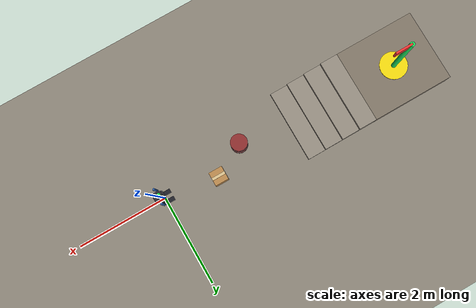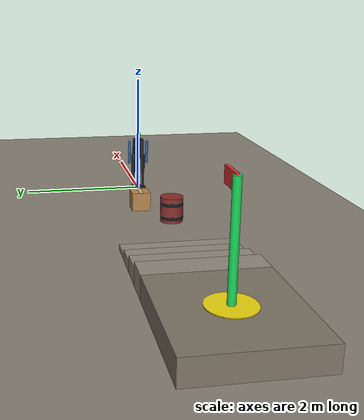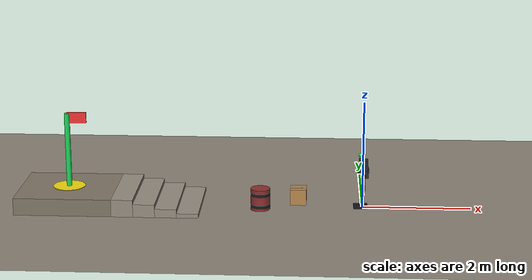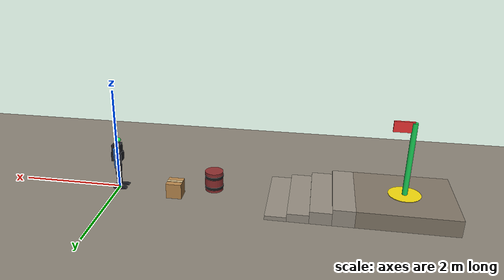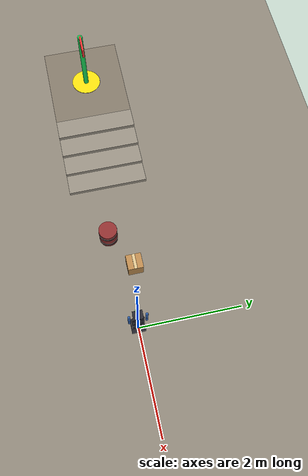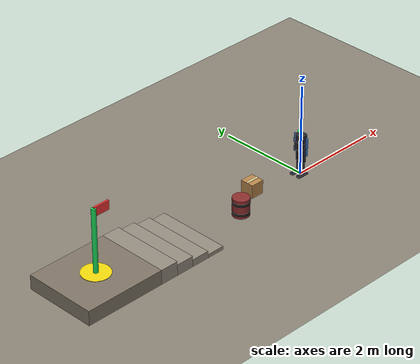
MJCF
<mujoco model="g1_stairs_navigation">

  <compiler angle="radian" autolimits="true"/>
  <option gravity="0 0 -9.81" timestep="0.002" iterations="50" tolerance="1e-10"
          cone="elliptic" impratio="100"/>

  <default>
    <joint damping="2.0" frictionloss="0.2" armature="0.02"/>
    <geom contype="1" conaffinity="1" condim="3"
          friction="0.6 0.02 0.001" solref="0.005 1" solimp="0.98 0.99 0.001"/>
    <position kp="350" ctrlrange="-3.14 3.14" forcelimited="true" forcerange="-139 139"/>
    <default class="foot">
      <geom condim="6" friction="1.0 0.02 0.01"
            solimp="0.95 0.99 0.001" solref="0.005 1"/>
    </default>
  </default>

  <asset>
    <texture name="sky" type="skybox" builtin="gradient"
             rgb1="0.45 0.60 0.85" rgb2="0.75 0.85 0.95"
             width="512" height="512" mark="random" markrgb="1 1 1"
             random="0.01"/>
    <texture name="ground_tex" type="2d" builtin="flat"
             rgb1="0.72 0.70 0.66" rgb2="0.68 0.66 0.62"
             width="512" height="512"/>
    <material name="ground_mat" texture="ground_tex" texrepeat="12 12"
              texuniform="true" reflectance="0.02" rgba="0.75 0.73 0.70 1"/>

    <material name="cardboard"  rgba="0.72 0.53 0.30 1" reflectance="0.02"/>
    <material name="barrel"     rgba="0.55 0.18 0.18 1" reflectance="0.20"/>
    <material name="step_mat"   rgba="0.58 0.55 0.50 1" reflectance="0.05"/>
    <material name="deck_mat"   rgba="0.50 0.46 0.40 1" reflectance="0.04"/>
    <material name="goal_pad"   rgba="0.95 0.85 0.05 1" reflectance="0.30"
              emission="0.25"/>
    <material name="beacon"     rgba="0.10 0.85 0.35 1" reflectance="0.10"
              emission="0.20"/>
    <material name="flag"       rgba="0.95 0.20 0.20 1" reflectance="0.10"/>
    <material name="body_mat"   rgba="0.15 0.15 0.18 1" reflectance="0.05"/>
    <material name="leg_mat"    rgba="0.12 0.12 0.15 1" reflectance="0.03"/>
    <material name="arm_mat"    rgba="0.20 0.40 0.70 1" reflectance="0.05"/>
  </asset>

  <worldbody>
    <!-- Lighting -->
    <light name="sun" pos="3 3 12" dir="-0.3 -0.2 -1" diffuse="1.2 1.15 1.0"
           specular="0.5 0.5 0.4" castshadow="true"/>
    <light name="ambient" pos="0 0 10" dir="0 0 -1" diffuse="0.35 0.38 0.45"
           specular="0 0 0" castshadow="false"/>
    <light name="fill"   pos="-5 -3 6" dir="0.3 0.2 -1" diffuse="0.25 0.25 0.30"
           castshadow="false"/>

    <!-- Ground plane -->
    <geom name="floor" type="plane" size="20 20 0.1" material="ground_mat"
          condim="6" friction="1.0 0.02 0.01"/>

    <!-- == Obstacle 1 - cardboard box, slightly left of centerline == -->
    <body name="obstacle_box" pos="-1.2 0.18 0.15">
      <geom type="box" size="0.15 0.15 0.15" material="cardboard"
            mass="5.0" friction="0.7 0.02 0.001"/>
      <geom type="box" size="0.151 0.03 0.003" pos="0 0 0.153"
            rgba="0.85 0.75 0.55 1" contype="0" conaffinity="0"/>
    </body>

    <!-- == Obstacle 2 - barrel, slightly right of centerline == -->
    <body name="obstacle_barrel" pos="-1.9 -0.20 0.20">
      <geom type="cylinder" size="0.18 0.20" material="barrel"
            mass="12.0" friction="0.7 0.02 0.001"/>
      <geom type="cylinder" size="0.181 0.03" pos="0 0 0.10"
            rgba="0.10 0.10 0.10 1" contype="0" conaffinity="0"/>
      <geom type="cylinder" size="0.181 0.03" pos="0 0 -0.12"
            rgba="0.10 0.10 0.10 1" contype="0" conaffinity="0"/>
    </body>

    <!-- == Stairs - 4 steps, 0.40m deep x 0.08m rise == -->
    <body name="step_1" pos="-3.2 0 0.04">
      <geom type="box" size="0.20 0.80 0.04" material="step_mat"
            friction="0.9 0.02 0.001"/>
    </body>
    <body name="step_2" pos="-3.6 0 0.08">
      <geom type="box" size="0.20 0.80 0.08" material="step_mat"
            friction="0.9 0.02 0.001"/>
    </body>
    <body name="step_3" pos="-4.0 0 0.12">
      <geom type="box" size="0.20 0.80 0.12" material="step_mat"
            friction="0.9 0.02 0.001"/>
    </body>
    <body name="step_4" pos="-4.4 0 0.16">
      <geom type="box" size="0.20 0.80 0.16" material="step_mat"
            friction="0.9 0.02 0.001"/>
    </body>

    <!-- == Top deck == -->
    <body name="top_deck" pos="-5.5 0 0.16">
      <geom type="box" size="0.90 0.80 0.16" material="deck_mat"
            friction="0.9 0.02 0.001"/>
    </body>

    <!-- == Goal beacon == -->
    <geom name="goal_pad_disc" type="cylinder" size="0.30 0.005"
          pos="-5.5 0 0.328" material="goal_pad"
          contype="0" conaffinity="0"/>
    <geom name="goal_beacon" type="cylinder" size="0.05 0.70"
          pos="-5.5 0 1.03" material="beacon"
          contype="0" conaffinity="0"/>
    <geom name="goal_flag" type="box" size="0.18 0.02 0.10"
          pos="-5.32 0 1.65" material="flag"
          contype="0" conaffinity="0"/>

    <!-- == G1 humanoid (16-DOF) ================================== -->
    <body name="trunk" pos="0 0 0.75">
      <freejoint name="root"/>
      <site name="imu" pos="0 0 0" size="0.005"/>

      <!-- Pelvis — heavy and low to keep the CoM near the hips so the
           straight-leg stand can be stabilised by ankle feedback alone. -->
      <geom name="pelvis" type="box" size="0.10 0.0875 0.09" pos="0 0 -0.08"
            mass="16.0" material="body_mat"/>
      <!-- Light torso shell above the pelvis (visual; little mass up high) -->
      <geom name="torso" type="box" size="0.08 0.09 0.10" pos="0 0 0.07"
            mass="3.0" material="body_mat"/>
      <!-- Head marker + forward camera (head faces -x), kept light -->
      <geom name="head_marker" type="sphere" size="0.04" pos="-0.05 0 0.26"
            rgba="0.1 0.95 0.3 1" contype="0" conaffinity="0" mass="0.05"/>
      <camera name="forward" pos="-0.08 0 0.24" euler="1.5708 -1.5708 0"
              fovy="70"/>

      <!-- ===== Left leg ===== -->
      <body name="L_thigh" pos="0 0.0875 -0.135">
        <joint name="L_hip_yaw"   axis="0 0 1" range="-2.87 2.87"/>
        <joint name="L_hip_roll"  axis="1 0 0" range="-0.52 0.52"/>
        <joint name="L_hip_pitch" axis="0 1 0" range="-2.53 2.53"/>
        <geom type="capsule" size="0.035" fromto="0 0 0 0 0 -0.30"
              mass="2.0" material="leg_mat"/>
        <body name="L_calf" pos="0 0 -0.30">
          <joint name="L_knee" axis="0 1 0" range="-0.26 2.05"/>
          <geom type="capsule" size="0.022" fromto="0 0 0 0 0 -0.27"
                mass="1.5" material="leg_mat"/>
          <body name="L_foot" pos="0 0 -0.30">
            <joint name="L_ankle_pitch" axis="0 1 0" range="-0.87 0.52"/>
            <joint name="L_ankle_roll"  axis="1 0 0" range="-0.26 0.26"/>
            <geom name="L_foot_geom" type="box" size="0.13 0.045 0.015"
                  pos="-0.04 0 0" mass="0.6" material="leg_mat" class="foot"/>
          </body>
        </body>
      </body>

      <!-- ===== Right leg ===== -->
      <body name="R_thigh" pos="0 -0.0875 -0.135">
        <joint name="R_hip_yaw"   axis="0 0 1" range="-2.87 2.87"/>
        <joint name="R_hip_roll"  axis="1 0 0" range="-0.52 0.52"/>
        <joint name="R_hip_pitch" axis="0 1 0" range="-2.53 2.53"/>
        <geom type="capsule" size="0.035" fromto="0 0 0 0 0 -0.30"
              mass="2.0" material="leg_mat"/>
        <body name="R_calf" pos="0 0 -0.30">
          <joint name="R_knee" axis="0 1 0" range="-0.26 2.05"/>
          <geom type="capsule" size="0.022" fromto="0 0 0 0 0 -0.27"
                mass="1.5" material="leg_mat"/>
          <body name="R_foot" pos="0 0 -0.30">
            <joint name="R_ankle_pitch" axis="0 1 0" range="-0.87 0.52"/>
            <joint name="R_ankle_roll"  axis="1 0 0" range="-0.26 0.26"/>
            <geom name="R_foot_geom" type="box" size="0.13 0.045 0.015"
                  pos="-0.04 0 0" mass="0.6" material="leg_mat" class="foot"/>
          </body>
        </body>
      </body>

      <!-- ===== Left arm ===== -->
      <body name="L_upper_arm" pos="0 0.16 0.12">
        <joint name="L_shoulder_pitch" axis="0 1 0" range="-3.09 2.67"/>
        <geom type="capsule" size="0.025" fromto="0 0 0 0 0 -0.20"
              mass="0.8" material="arm_mat"/>
        <body name="L_forearm" pos="0 0 -0.20">
          <joint name="L_elbow" axis="0 1 0" range="-0.10 2.09"/>
          <geom type="capsule" size="0.021" fromto="0 0 0 0 0 -0.18"
                mass="0.5" material="arm_mat"/>
        </body>
      </body>

      <!-- ===== Right arm ===== -->
      <body name="R_upper_arm" pos="0 -0.16 0.12">
        <joint name="R_shoulder_pitch" axis="0 1 0" range="-3.09 2.67"/>
        <geom type="capsule" size="0.025" fromto="0 0 0 0 0 -0.20"
              mass="0.8" material="arm_mat"/>
        <body name="R_forearm" pos="0 0 -0.20">
          <joint name="R_elbow" axis="0 1 0" range="-0.10 2.09"/>
          <geom type="capsule" size="0.021" fromto="0 0 0 0 0 -0.18"
                mass="0.5" material="arm_mat"/>
        </body>
      </body>
    </body>
  </worldbody>

  <!-- Actuator order MUST match BipedalGaitEngine output (16-vector). -->
  <actuator>
    <position name="L_hip_yaw"      joint="L_hip_yaw"      forcerange="-88 88"/>
    <position name="L_hip_roll"     joint="L_hip_roll"     forcerange="-88 88"/>
    <position name="L_hip_pitch"    joint="L_hip_pitch"    forcerange="-88 88"/>
    <position name="L_knee"         joint="L_knee"         forcerange="-139 139"/>
    <position name="L_ankle_pitch"  joint="L_ankle_pitch"  kp="400" forcerange="-120 120"/>
    <position name="L_ankle_roll"   joint="L_ankle_roll"   kp="400" forcerange="-120 120"/>
    <position name="R_hip_yaw"      joint="R_hip_yaw"      forcerange="-88 88"/>
    <position name="R_hip_roll"     joint="R_hip_roll"     forcerange="-88 88"/>
    <position name="R_hip_pitch"    joint="R_hip_pitch"    forcerange="-88 88"/>
    <position name="R_knee"         joint="R_knee"         forcerange="-139 139"/>
    <position name="R_ankle_pitch"  joint="R_ankle_pitch"  kp="400" forcerange="-120 120"/>
    <position name="R_ankle_roll"   joint="R_ankle_roll"   kp="400" forcerange="-120 120"/>
    <position name="L_shoulder_pitch" joint="L_shoulder_pitch" kp="60" forcerange="-40 40"/>
    <position name="L_elbow"          joint="L_elbow"          kp="60" forcerange="-40 40"/>
    <position name="R_shoulder_pitch" joint="R_shoulder_pitch" kp="60" forcerange="-40 40"/>
    <position name="R_elbow"          joint="R_elbow"          kp="60" forcerange="-40 40"/>
  </actuator>
</mujoco>
